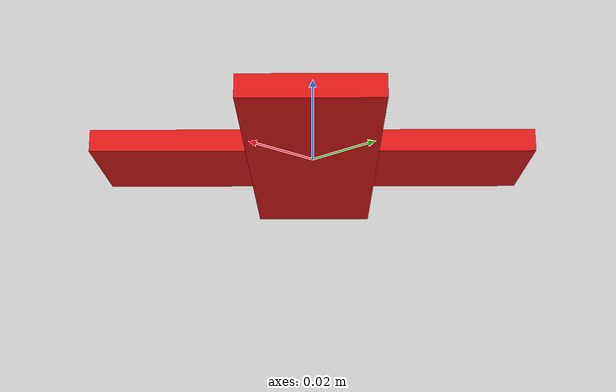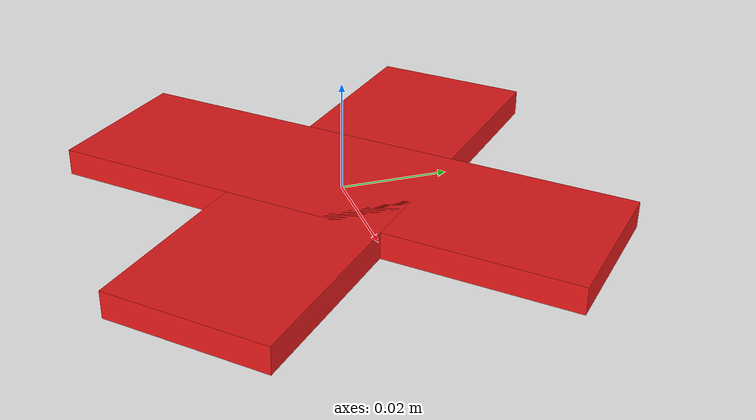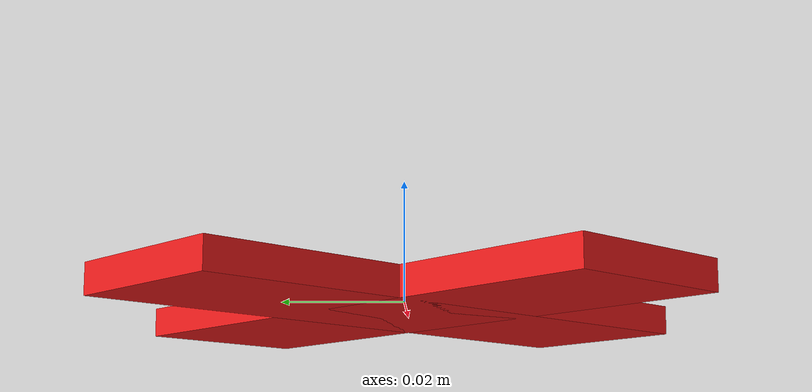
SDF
<?xml version="1.0"?>
<sdf version="1.7">
  <model name="CrossPrismatic2D">
    <link name="cross">
      <pose>0 0 0 0 0 0</pose>
      <inertial>
        <pose>0 0 0 0 0 0</pose>
        <mass>0.001</mass>
      </inertial>
      <visual name="visual">
        <pose>0 0 0 0 0 0.7854</pose>
        <geometry>
          <box>
            <size>0.1 0.03 0.005</size>
          </box>
        </geometry>
        <material>
          <diffuse>0.9 0.1 0.1 1</diffuse>
        </material>
      </visual>
      <visual name="visual2">
        <pose>0 0 0 0 0 -0.7854</pose>
        <geometry>
          <box>
            <size>0.1 0.03 0.005</size>
          </box>
        </geometry>
        <material>
          <diffuse>0.9 0.1 0.1 1</diffuse>
        </material>
      </visual>
    </link>
    <link name='glue_sliderX_sliderY'>
      <pose relative_to='cross'>0 0.0 0 0 0 0</pose>
      <inertial>
        <mass>0.0001</mass>
      </inertial>
    </link>
    <joint name='Cross_Slider_x' type='prismatic'>
      <parent>world</parent>
      <child>glue_sliderX_sliderY</child>
      <axis>
        <xyz>1.0 0.0 0.0</xyz>
      <limit>
        <!-- This joint is not actuated. -->
        <effort>0</effort>
      </limit>
      </axis>
    </joint>
    <joint name='Cross_Slider_y' type='prismatic'>
      <parent>glue_sliderX_sliderY</parent>
      <child>cross</child>
      <axis>
        <xyz>0.0 1.0 0.0</xyz>
      <limit>
        <!-- This joint is not actuated. -->
        <effort>0</effort>
      </limit>
      </axis>
    </joint>
  </model>
</sdf>
